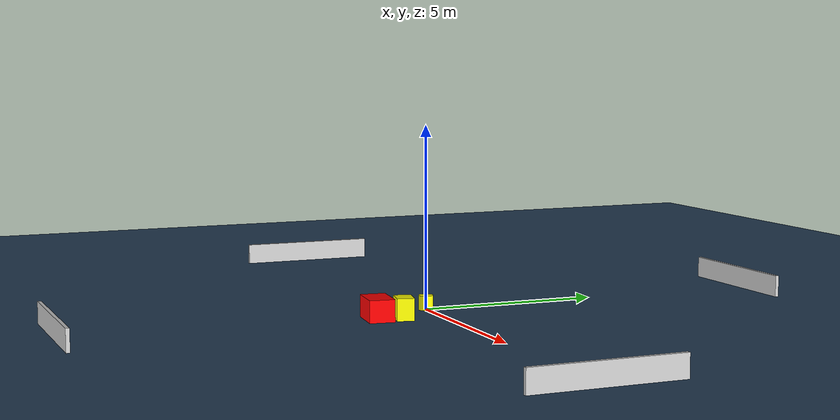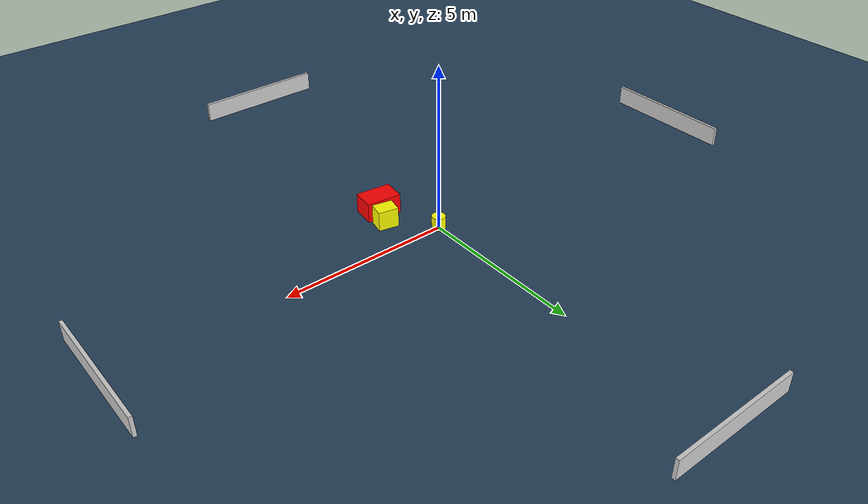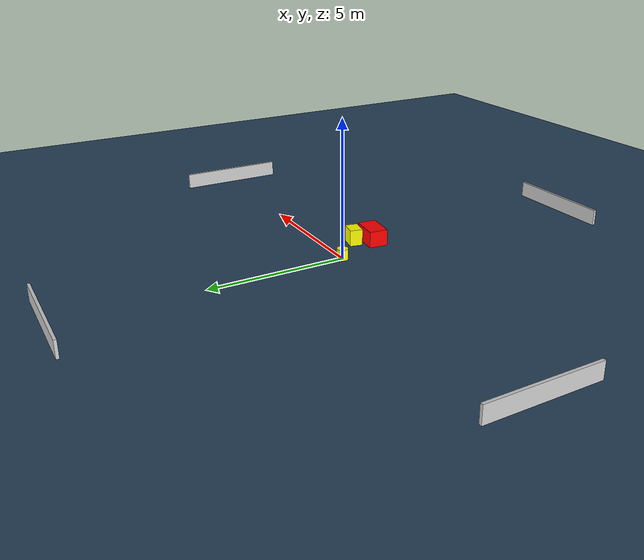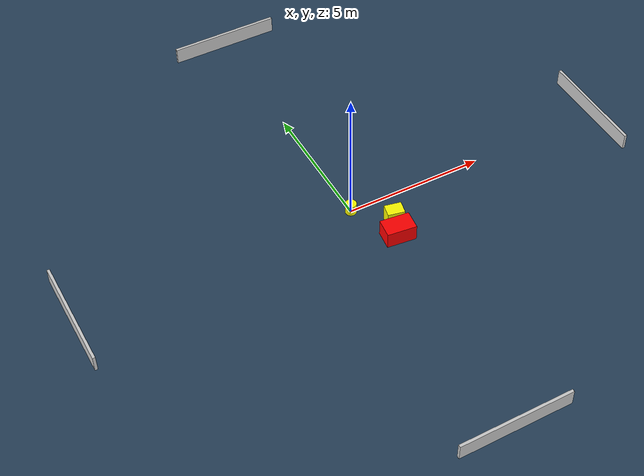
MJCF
<?xml version="1.0" ?>
<mujoco model="generated_environment">
  <option timestep="0.01" integrator="RK4" cone="elliptic"/>
  <default>
    <geom density="1"/>
  </default>
  <asset>
    <texture builtin="gradient" height="3072" name="skybox" rgb1="0.3 0.5 0.7" rgb2="0 0 0" type="skybox" width="512"/>
    <texture builtin="checker" height="300" name="groundplane" rgb1="0.2 0.3 0.4" rgb2="0.1 0.2 0.3" type="2d" width="300"/>
    <material name="groundplane" reflectance="0.2" texrepeat="5 5" texture="groundplane"/>
  </asset>
  <worldbody>
    <light dir="0 0 -1" directional="true" pos="0 0 1.5"/>
    <geom condim="3" friction="0.5 0.005 0.001" material="groundplane" name="floor" pos="0 0 0" size="0 0 0.05" type="plane"/>
    <body name="walls">
      <geom name="wall_1" condim="4" pos="-10.0 0.0 0.3" rgba="0.800000011920929 0.800000011920929 0.800000011920929 1.0" size="0.05 2.0 0.3" type="box"/>
      <geom name="wall_2" condim="4" pos="10.0 0.0 0.3" rgba="0.800000011920929 0.800000011920929 0.800000011920929 1.0" size="0.05 2.0 0.3" type="box"/>
      <geom name="wall_3" condim="4" pos="0.0 -10.0 0.3" rgba="0.800000011920929 0.800000011920929 0.800000011920929 1.0" size="2.0 0.05 0.3" type="box"/>
      <geom name="wall_4" condim="4" pos="0.0 10.0 0.3" rgba="0.800000011920929 0.800000011920929 0.800000011920929 1.0" size="2.0 0.05 0.3" type="box"/>
    </body>
    <body name="robot">
      <joint name="joint_x" type="slide" pos="0 0 0" axis="1 0 0"/>
      <joint name="joint_y" type="slide" pos="0 0 0" axis="0 1 0"/>
      <geom name="robot" type="cylinder" pos="0.0 0.0 0.2" size="0.2 0.2 0.0" mass="5.0" friction="1.0 0.005 0.0001" condim="4" rgba="1.0 1.0 0.0 1.0"/>
    </body>
    <body name="obstacle_1_movable">
      <geom name="obstacle_1_movable" condim="4" pos="1.0715922174255914 -1.0802362744004705 0.3" euler="0 0 257.9040899105439" friction="0.0 0.005 0.001" rgba="1.0 1.0 0.0 1.0" size="0.23123990444006828 0.3025386618028363 0.3" type="box" mass="0.1"/>
      <joint type="free"/>
    </body>
    <body name="obstacle_2_static">
      <geom name="obstacle_2_static" condim="4" pos="0.8348972054611064 -1.7321664404672794 0.3" euler="0 0 353.3968163332814" friction="0.0 0.005 0.001" rgba="1.0 0.0 0.0 1.0" size="0.5249222752984298 0.3423748666482108 0.3" type="box"/>
    </body>
  </worldbody>
  <actuator>
    <motor name="actuator_x" joint="joint_x" gear="1" ctrlrange="-1 1"/>
    <motor name="actuator_y" joint="joint_y" gear="1" ctrlrange="-1 1"/>
  </actuator>
</mujoco>
